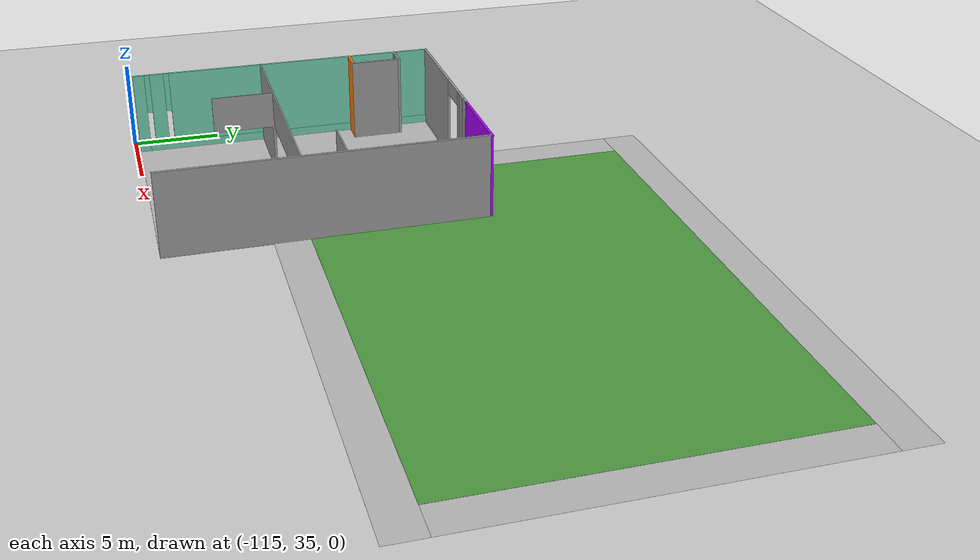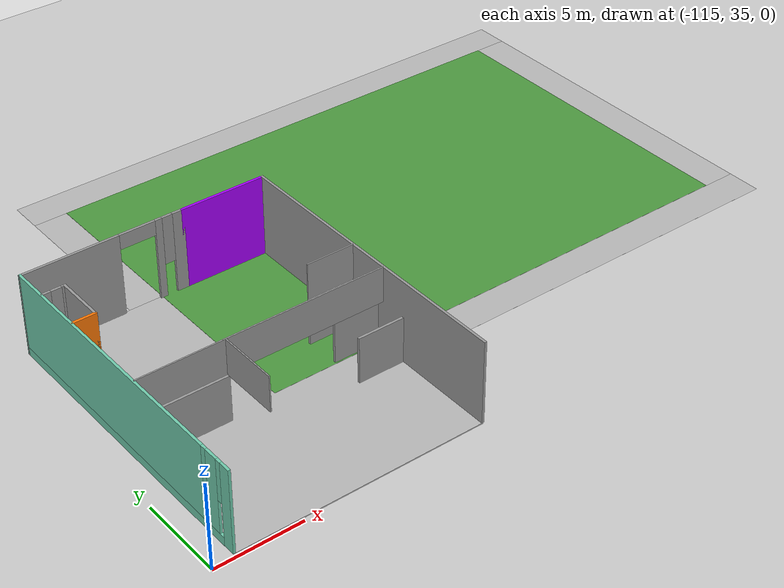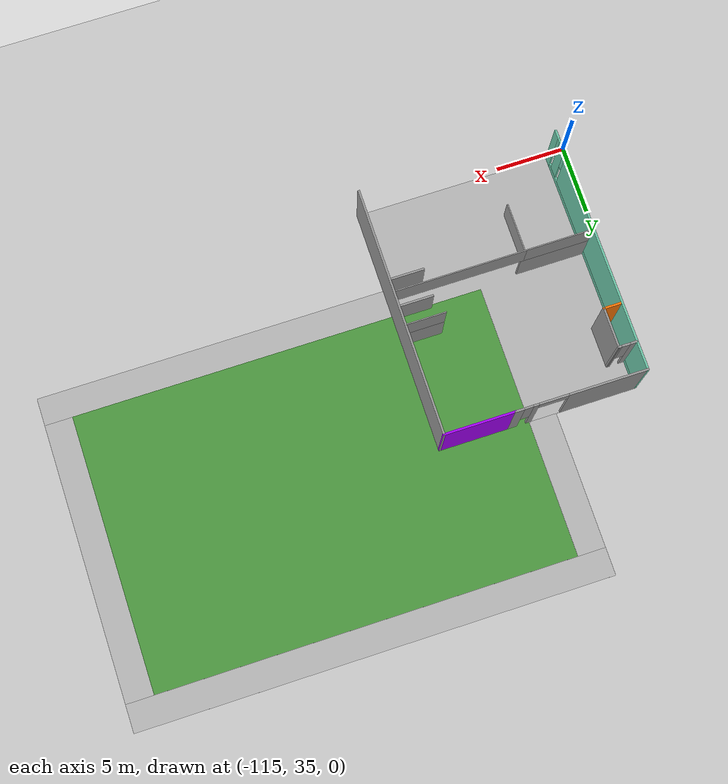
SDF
<sdf version="1.7">
 <world name="default">
  <model name="ground_plane">
   <static>1</static>
   <link name="link">
    <collision name="collision">
     <geometry><plane><normal>0 0 1</normal><size>100 100</size></plane></geometry>
     <surface><friction><ode><mu>100</mu><mu2>50</mu2></ode></friction></surface>
    </collision>
    <visual name="visual">
     <cast_shadows>0</cast_shadows>
     <geometry><plane><normal>0 0 1</normal><size>100 100</size></plane></geometry>
     <material>
      <script><uri>file://media/materials/scripts/gazebo.material</uri><name>Gazebo/Grey</name></script>
     </material>
    </visual>
   </link>
  </model>
  <model name="robocup_3d_field_3">
   <static>1</static>
   <link name="field">
    <pose>0 0 0.01 0 -0 0</pose>
    <collision name="collision">
     <geometry><plane><normal>0 0 1</normal><size>30 20</size></plane></geometry>
     <surface><friction><ode><mu>100</mu><mu2>50</mu2></ode></friction></surface>
    </collision>
    <visual name="base1">
     <pose>0 11 0.001 0 -0 0</pose>
     <cast_shadows>0</cast_shadows>
     <geometry><plane><normal>0 0 1</normal><size>34 2</size></plane></geometry>
     <material>
      <script>
       <uri>model://robocup_3Dsim_field/materials/scripts/</uri>
       <uri>model://robocup_3Dsim_field/materials/textures/</uri>
       <name>RoboCup/FieldBorder</name>
      </script>
     </material>
    </visual>
    <visual name="base2">
     <pose>0 -11 0.001 0 -0 0</pose>
     <cast_shadows>0</cast_shadows>
     <geometry><plane><normal>0 0 1</normal><size>34 2</size></plane></geometry>
     <material>
      <script>
       <uri>model://robocup_3Dsim_field/materials/scripts/</uri>
       <uri>model://robocup_3Dsim_field/materials/textures/</uri>
       <name>RoboCup/FieldBorder</name>
      </script>
     </material>
    </visual>
    <visual name="base3">
     <pose>16 0 0.001 0 -0 0</pose>
     <cast_shadows>0</cast_shadows>
     <geometry><plane><normal>0 0 1</normal><size>2 20</size></plane></geometry>
     <material>
      <script>
       <uri>model://robocup_3Dsim_field/materials/scripts/</uri>
       <uri>model://robocup_3Dsim_field/materials/textures/</uri>
       <name>RoboCup/FieldBorder</name>
      </script>
     </material>
    </visual>
    <visual name="base4">
     <pose>-16 0 0.001 0 -0 0</pose>
     <cast_shadows>0</cast_shadows>
     <geometry><plane><normal>0 0 1</normal><size>2 20</size></plane></geometry>
     <material>
      <script>
       <uri>model://robocup_3Dsim_field/materials/scripts/</uri>
       <uri>model://robocup_3Dsim_field/materials/textures/</uri>
       <name>RoboCup/FieldBorder</name>
      </script>
     </material>
    </visual>
    <visual name="carpet">
     <cast_shadows>0</cast_shadows>
     <geometry><plane><normal>0 0 1</normal><size>30 20</size></plane></geometry>
     <material>
      <script>
       <uri>model://robocup_3Dsim_field/materials/scripts/</uri>
       <uri>model://robocup_3Dsim_field/materials/textures/</uri>
       <name>RoboCup/Grass</name>
      </script>
     </material>
    </visual>
   </link>
   <pose>-90.8606 53.1637 0 0 -0 0</pose>
  </model>
  <model name="44444444443osrf_elevator_clone">
   <link name="Wall_0">
    <pose>-7.17647 0.013004 0 0 -0 1.57174</pose>
    <visual name="Wall_0_Visual_1">
     <meta><layer>0</layer></meta>
     <pose>0.331828 0 0.25 0 -0 0</pose>
     <geometry><box><size>17.4519 0.15 0.5</size></box></geometry>
     <material>
      <script><uri>file://media/materials/scripts/gazebo.material</uri><name>Gazebo/Grey</name></script>
      <ambient>0.435294 0.796078 0.67451 1</ambient>
      <shader type="pixel"/>
     </material>
    </visual>
    <visual name="Wall_0_Visual_0">
     <meta><layer>0</layer></meta>
     <pose>-8.72596 0 2.4385 0 -0 0</pose>
     <geometry><box><size>0.663656 0.15 4.877</size></box></geometry>
     <material>
      <script><uri>file://media/materials/scripts/gazebo.material</uri><name>Gazebo/Grey</name></script>
      <ambient>0.435294 0.796078 0.67451 1</ambient>
      <shader type="pixel"/>
     </material>
    </visual>
    <visual name="Wall_0_Visual_3">
     <meta><layer>0</layer></meta>
     <pose>1.05709 0 2.6885 0 -0 0</pose>
     <geometry><box><size>16.0014 0.15 4.377</size></box></geometry>
     <material>
      <script><uri>file://media/materials/scripts/gazebo.material</uri><name>Gazebo/Grey</name></script>
      <ambient>0.435294 0.796078 0.67451 1</ambient>
      <shader type="pixel"/>
     </material>
    </visual>
    <visual name="Wall_0_Visual_2">
     <meta><layer>0</layer></meta>
     <pose>-7.67281 0 2.6885 0 -0 0</pose>
     <geometry><box><size>0.816657 0.15 4.377</size></box></geometry>
     <material>
      <script><uri>file://media/materials/scripts/gazebo.material</uri><name>Gazebo/Grey</name></script>
      <ambient>0.435294 0.796078 0.67451 1</ambient>
      <shader type="pixel"/>
     </material>
    </visual>
    <visual name="Wall_0_Visual_4">
     <meta><layer>0</layer></meta>
     <pose>-8.23763 0 3.6885 0 -0 0</pose>
     <geometry><box><size>0.313 0.15 2.377</size></box></geometry>
     <material>
      <script><uri>file://media/materials/scripts/gazebo.material</uri><name>Gazebo/Grey</name></script>
      <ambient>0.435294 0.796078 0.67451 1</ambient>
      <shader type="pixel"/>
     </material>
    </visual>
    <visual name="Wall_0_Visual_5">
     <meta><layer>0</layer></meta>
     <pose>-7.10405 0 3.6885 0 -0 0</pose>
     <geometry><box><size>0.320861 0.15 2.377</size></box></geometry>
     <material>
      <script><uri>file://media/materials/scripts/gazebo.material</uri><name>Gazebo/Grey</name></script>
      <ambient>0.435294 0.796078 0.67451 1</ambient>
      <shader type="pixel"/>
     </material>
    </visual>
    <collision name="Wall_0_Collision_0">
     <pose>-8.72596 0 2.4385 0 -0 0</pose>
     <geometry><box><size>0.663656 0.15 4.877</size></box></geometry>
     <surface>
      <friction>
       <ode><mu>1</mu><mu2>1</mu2><fdir1>0 0 0</fdir1><slip1>0</slip1><slip2>0</slip2></ode>
       <torsional>
        <coefficient>1</coefficient>
        <patch_radius>0</patch_radius>
        <surface_radius>0</surface_radius>
        <use_patch_radius>1</use_patch_radius>
        <ode><slip>0</slip></ode>
       </torsional>
      </friction>
      <bounce><restitution_coefficient>0</restitution_coefficient><threshold>1e+06</threshold></bounce>
      <contact>
       <collide_without_contact>0</collide_without_contact>
       <collide_without_contact_bitmask>1</collide_without_contact_bitmask>
       <collide_bitmask>1</collide_bitmask>
       <ode>
        <soft_cfm>0</soft_cfm>
        <soft_erp>0.2</soft_erp>
        <kp>1e+13</kp>
        <kd>1</kd>
        <max_vel>0.01</max_vel>
        <min_depth>0</min_depth>
       </ode>
       <bullet>
        <split_impulse>1</split_impulse>
        <split_impulse_penetration_threshold>-0.01</split_impulse_penetration_threshold>
        <soft_cfm>0</soft_cfm>
        <soft_erp>0.2</soft_erp>
        <kp>1e+13</kp>
        <kd>1</kd>
       </bullet>
      </contact>
     </surface>
    </collision>
    <collision name="Wall_0_Collision_5">
     <pose>-7.10405 0 3.6885 0 -0 0</pose>
     <geometry><box><size>0.320861 0.15 2.377</size></box></geometry>
     <surface>
      <friction>
       <ode><mu>1</mu><mu2>1</mu2><fdir1>0 0 0</fdir1><slip1>0</slip1><slip2>0</slip2></ode>
       <torsional>
        <coefficient>1</coefficient>
        <patch_radius>0</patch_radius>
        <surface_radius>0</surface_radius>
        <use_patch_radius>1</use_patch_radius>
        <ode><slip>0</slip></ode>
       </torsional>
      </friction>
      <bounce><restitution_coefficient>0</restitution_coefficient><threshold>1e+06</threshold></bounce>
      <contact>
       <collide_without_contact>0</collide_without_contact>
       <collide_without_contact_bitmask>1</collide_without_contact_bitmask>
       <collide_bitmask>1</collide_bitmask>
       <ode>
        <soft_cfm>0</soft_cfm>
        <soft_erp>0.2</soft_erp>
        <kp>1e+13</kp>
        <kd>1</kd>
        <max_vel>0.01</max_vel>
        <min_depth>0</min_depth>
       </ode>
       <bullet>
        <split_impulse>1</split_impulse>
        <split_impulse_penetration_threshold>-0.01</split_impulse_penetration_threshold>
        <soft_cfm>0</soft_cfm>
        <soft_erp>0.2</soft_erp>
        <kp>1e+13</kp>
        <kd>1</kd>
       </bullet>
      </contact>
     </surface>
    </collision>
    <collision name="Wall_0_Collision_1">
     <pose>0.331828 0 0.25 0 -0 0</pose>
     <geometry><box><size>17.4519 0.15 0.5</size></box></geometry>
     <surface>
      <friction>
       <ode><mu>1</mu><mu2>1</mu2><fdir1>0 0 0</fdir1><slip1>0</slip1><slip2>0</slip2></ode>
       <torsional>
        <coefficient>1</coefficient>
        <patch_radius>0</patch_radius>
        <surface_radius>0</surface_radius>
        <use_patch_radius>1</use_patch_radius>
        <ode><slip>0</slip></ode>
       </torsional>
      </friction>
      <bounce><restitution_coefficient>0</restitution_coefficient><threshold>1e+06</threshold></bounce>
      <contact>
       <collide_without_contact>0</collide_without_contact>
       <collide_without_contact_bitmask>1</collide_without_contact_bitmask>
       <collide_bitmask>1</collide_bitmask>
       <ode>
        <soft_cfm>0</soft_cfm>
        <soft_erp>0.2</soft_erp>
        <kp>1e+13</kp>
        <kd>1</kd>
        <max_vel>0.01</max_vel>
        <min_depth>0</min_depth>
       </ode>
       <bullet>
        <split_impulse>1</split_impulse>
        <split_impulse_penetration_threshold>-0.01</split_impulse_penetration_threshold>
        <soft_cfm>0</soft_cfm>
        <soft_erp>0.2</soft_erp>
        <kp>1e+13</kp>
        <kd>1</kd>
       </bullet>
      </contact>
     </surface>
    </collision>
    <collision name="Wall_0_Collision_2">
     <pose>-7.67281 0 2.6885 0 -0 0</pose>
     <geometry><box><size>0.816657 0.15 4.377</size></box></geometry>
     <surface>
      <friction>
       <ode><mu>1</mu><mu2>1</mu2><fdir1>0 0 0</fdir1><slip1>0</slip1><slip2>0</slip2></ode>
       <torsional>
        <coefficient>1</coefficient>
        <patch_radius>0</patch_radius>
        <surface_radius>0</surface_radius>
        <use_patch_radius>1</use_patch_radius>
        <ode><slip>0</slip></ode>
       </torsional>
      </friction>
      <bounce><restitution_coefficient>0</restitution_coefficient><threshold>1e+06</threshold></bounce>
      <contact>
       <collide_without_contact>0</collide_without_contact>
       <collide_without_contact_bitmask>1</collide_without_contact_bitmask>
       <collide_bitmask>1</collide_bitmask>
       <ode>
        <soft_cfm>0</soft_cfm>
        <soft_erp>0.2</soft_erp>
        <kp>1e+13</kp>
        <kd>1</kd>
        <max_vel>0.01</max_vel>
        <min_depth>0</min_depth>
       </ode>
       <bullet>
        <split_impulse>1</split_impulse>
        <split_impulse_penetration_threshold>-0.01</split_impulse_penetration_threshold>
        <soft_cfm>0</soft_cfm>
        <soft_erp>0.2</soft_erp>
        <kp>1e+13</kp>
        <kd>1</kd>
       </bullet>
      </contact>
     </surface>
    </collision>
    <collision name="Wall_0_Collision_3">
     <pose>1.05709 0 2.6885 0 -0 0</pose>
     <geometry><box><size>16.0014 0.15 4.377</size></box></geometry>
     <surface>
      <friction>
       <ode><mu>1</mu><mu2>1</mu2><fdir1>0 0 0</fdir1><slip1>0</slip1><slip2>0</slip2></ode>
       <torsional>
        <coefficient>1</coefficient>
        <patch_radius>0</patch_radius>
        <surface_radius>0</surface_radius>
        <use_patch_radius>1</use_patch_radius>
        <ode><slip>0</slip></ode>
       </torsional>
      </friction>
      <bounce><restitution_coefficient>0</restitution_coefficient><threshold>1e+06</threshold></bounce>
      <contact>
       <collide_without_contact>0</collide_without_contact>
       <collide_without_contact_bitmask>1</collide_without_contact_bitmask>
       <collide_bitmask>1</collide_bitmask>
       <ode>
        <soft_cfm>0</soft_cfm>
        <soft_erp>0.2</soft_erp>
        <kp>1e+13</kp>
        <kd>1</kd>
        <max_vel>0.01</max_vel>
        <min_depth>0</min_depth>
       </ode>
       <bullet>
        <split_impulse>1</split_impulse>
        <split_impulse_penetration_threshold>-0.01</split_impulse_penetration_threshold>
        <soft_cfm>0</soft_cfm>
        <soft_erp>0.2</soft_erp>
        <kp>1e+13</kp>
        <kd>1</kd>
       </bullet>
      </contact>
     </surface>
    </collision>
    <collision name="Wall_0_Collision_4">
     <pose>-8.23763 0 3.6885 0 -0 0</pose>
     <geometry><box><size>0.313 0.15 2.377</size></box></geometry>
     <surface>
      <friction>
       <ode><mu>1</mu><mu2>1</mu2><fdir1>0 0 0</fdir1><slip1>0</slip1><slip2>0</slip2></ode>
       <torsional>
        <coefficient>1</coefficient>
        <patch_radius>0</patch_radius>
        <surface_radius>0</surface_radius>
        <use_patch_radius>1</use_patch_radius>
        <ode><slip>0</slip></ode>
       </torsional>
      </friction>
      <bounce><restitution_coefficient>0</restitution_coefficient><threshold>1e+06</threshold></bounce>
      <contact>
       <collide_without_contact>0</collide_without_contact>
       <collide_without_contact_bitmask>1</collide_without_contact_bitmask>
       <collide_bitmask>1</collide_bitmask>
       <ode>
        <soft_cfm>0</soft_cfm>
        <soft_erp>0.2</soft_erp>
        <kp>1e+13</kp>
        <kd>1</kd>
        <max_vel>0.01</max_vel>
        <min_depth>0</min_depth>
       </ode>
       <bullet>
        <split_impulse>1</split_impulse>
        <split_impulse_penetration_threshold>-0.01</split_impulse_penetration_threshold>
        <soft_cfm>0</soft_cfm>
        <soft_erp>0.2</soft_erp>
        <kp>1e+13</kp>
        <kd>1</kd>
       </bullet>
      </contact>
     </surface>
    </collision>
   </link>
   <link name="Wall_16">
    <pose>-4.68247 -1.4425 0 0 -0 0</pose>
    <visual name="Wall_16_Visual">
     <meta><layer>0</layer></meta>
     <pose>0 0 1.3715 0 -0 0</pose>
     <geometry><box><size>5.12727 0.15 2.743</size></box></geometry>
     <material>
      <script><uri>file://media/materials/scripts/gazebo.material</uri><name>Gazebo/Grey</name></script>
      <ambient>1 1 1 1</ambient>
      <shader type="pixel"/>
     </material>
    </visual>
    <collision name="Wall_16_Collision">
     <pose>0 0 1.3715 0 -0 0</pose>
     <geometry><box><size>5.12727 0.15 2.743</size></box></geometry>
     <surface>
      <friction>
       <ode><mu>1</mu><mu2>1</mu2><fdir1>0 0 0</fdir1><slip1>0</slip1><slip2>0</slip2></ode>
       <torsional>
        <coefficient>1</coefficient>
        <patch_radius>0</patch_radius>
        <surface_radius>0</surface_radius>
        <use_patch_radius>1</use_patch_radius>
        <ode><slip>0</slip></ode>
       </torsional>
      </friction>
      <bounce><restitution_coefficient>0</restitution_coefficient><threshold>1e+06</threshold></bounce>
      <contact>
       <collide_without_contact>0</collide_without_contact>
       <collide_without_contact_bitmask>1</collide_without_contact_bitmask>
       <collide_bitmask>1</collide_bitmask>
       <ode>
        <soft_cfm>0</soft_cfm>
        <soft_erp>0.2</soft_erp>
        <kp>1e+13</kp>
        <kd>1</kd>
        <max_vel>0.01</max_vel>
        <min_depth>0</min_depth>
       </ode>
       <bullet>
        <split_impulse>1</split_impulse>
        <split_impulse_penetration_threshold>-0.01</split_impulse_penetration_threshold>
        <soft_cfm>0</soft_cfm>
        <soft_erp>0.2</soft_erp>
        <kp>1e+13</kp>
        <kd>1</kd>
       </bullet>
      </contact>
     </surface>
    </collision>
   </link>
   <link name="Wall_20">
    <pose>5.74253 1.037 0 0 0 -3.1383</pose>
    <visual name="Wall_20_Visual">
     <meta><layer>0</layer></meta>
     <pose>0 0 1.3715 0 -0 0</pose>
     <geometry><box><size>2.88731 0.15 2.743</size></box></geometry>
     <material>
      <script><uri>file://media/materials/scripts/gazebo.material</uri><name>Gazebo/Grey</name></script>
      <ambient>1 1 1 1</ambient>
      <shader type="pixel"/>
     </material>
    </visual>
    <collision name="Wall_20_Collision">
     <pose>0 0 1.3715 0 -0 0</pose>
     <geometry><box><size>2.88731 0.15 2.743</size></box></geometry>
     <surface>
      <friction>
       <ode><mu>1</mu><mu2>1</mu2><fdir1>0 0 0</fdir1><slip1>0</slip1><slip2>0</slip2></ode>
       <torsional>
        <coefficient>1</coefficient>
        <patch_radius>0</patch_radius>
        <surface_radius>0</surface_radius>
        <use_patch_radius>1</use_patch_radius>
        <ode><slip>0</slip></ode>
       </torsional>
      </friction>
      <bounce><restitution_coefficient>0</restitution_coefficient><threshold>1e+06</threshold></bounce>
      <contact>
       <collide_without_contact>0</collide_without_contact>
       <collide_without_contact_bitmask>1</collide_without_contact_bitmask>
       <collide_bitmask>1</collide_bitmask>
       <ode>
        <soft_cfm>0</soft_cfm>
        <soft_erp>0.2</soft_erp>
        <kp>1e+13</kp>
        <kd>1</kd>
        <max_vel>0.01</max_vel>
        <min_depth>0</min_depth>
       </ode>
       <bullet>
        <split_impulse>1</split_impulse>
        <split_impulse_penetration_threshold>-0.01</split_impulse_penetration_threshold>
        <soft_cfm>0</soft_cfm>
        <soft_erp>0.2</soft_erp>
        <kp>1e+13</kp>
        <kd>1</kd>
       </bullet>
      </contact>
     </surface>
    </collision>
   </link>
   <link name="Wall_23">
    <pose>5.74203 -2.9565 0 0 -0 0</pose>
    <visual name="Wall_23_Visual">
     <meta><layer>0</layer></meta>
     <pose>0 0 1.3715 0 -0 0</pose>
     <geometry><box><size>2.75 0.15 2.743</size></box></geometry>
     <material>
      <script><uri>file://media/materials/scripts/gazebo.material</uri><name>Gazebo/Grey</name></script>
      <ambient>1 1 1 1</ambient>
      <shader type="pixel"/>
     </material>
    </visual>
    <collision name="Wall_23_Collision">
     <pose>0 0 1.3715 0 -0 0</pose>
     <geometry><box><size>2.75 0.15 2.743</size></box></geometry>
     <surface>
      <friction>
       <ode><mu>1</mu><mu2>1</mu2><fdir1>0 0 0</fdir1><slip1>0</slip1><slip2>0</slip2></ode>
       <torsional>
        <coefficient>1</coefficient>
        <patch_radius>0</patch_radius>
        <surface_radius>0</surface_radius>
        <use_patch_radius>1</use_patch_radius>
        <ode><slip>0</slip></ode>
       </torsional>
      </friction>
      <bounce><restitution_coefficient>0</restitution_coefficient><threshold>1e+06</threshold></bounce>
      <contact>
       <collide_without_contact>0</collide_without_contact>
       <collide_without_contact_bitmask>1</collide_without_contact_bitmask>
       <collide_bitmask>1</collide_bitmask>
       <ode>
        <soft_cfm>0</soft_cfm>
        <soft_erp>0.2</soft_erp>
        <kp>1e+13</kp>
        <kd>1</kd>
        <max_vel>0.01</max_vel>
        <min_depth>0</min_depth>
       </ode>
       <bullet>
        <split_impulse>1</split_impulse>
        <split_impulse_penetration_threshold>-0.01</split_impulse_penetration_threshold>
        <soft_cfm>0</soft_cfm>
        <soft_erp>0.2</soft_erp>
        <kp>1e+13</kp>
        <kd>1</kd>
       </bullet>
      </contact>
     </surface>
    </collision>
   </link>
   <link name="Wall_25">
    <pose>5.76203 -0.932495 0 0 -0 0</pose>
    <visual name="Wall_25_Visual">
     <meta><layer>0</layer></meta>
     <pose>0 0 1.3715 0 -0 0</pose>
     <geometry><box><size>2.75 0.15 2.743</size></box></geometry>
     <material>
      <script><uri>file://media/materials/scripts/gazebo.material</uri><name>Gazebo/Grey</name></script>
      <ambient>1 1 1 1</ambient>
      <shader type="pixel"/>
     </material>
    </visual>
    <collision name="Wall_25_Collision">
     <pose>0 0 1.3715 0 -0 0</pose>
     <geometry><box><size>2.75 0.15 2.743</size></box></geometry>
     <surface>
      <friction>
       <ode><mu>1</mu><mu2>1</mu2><fdir1>0 0 0</fdir1><slip1>0</slip1><slip2>0</slip2></ode>
       <torsional>
        <coefficient>1</coefficient>
        <patch_radius>0</patch_radius>
        <surface_radius>0</surface_radius>
        <use_patch_radius>1</use_patch_radius>
        <ode><slip>0</slip></ode>
       </torsional>
      </friction>
      <bounce><restitution_coefficient>0</restitution_coefficient><threshold>1e+06</threshold></bounce>
      <contact>
       <collide_without_contact>0</collide_without_contact>
       <collide_without_contact_bitmask>1</collide_without_contact_bitmask>
       <collide_bitmask>1</collide_bitmask>
       <ode>
        <soft_cfm>0</soft_cfm>
        <soft_erp>0.2</soft_erp>
        <kp>1e+13</kp>
        <kd>1</kd>
        <max_vel>0.01</max_vel>
        <min_depth>0</min_depth>
       </ode>
       <bullet>
        <split_impulse>1</split_impulse>
        <split_impulse_penetration_threshold>-0.01</split_impulse_penetration_threshold>
        <soft_cfm>0</soft_cfm>
        <soft_erp>0.2</soft_erp>
        <kp>1e+13</kp>
        <kd>1</kd>
       </bullet>
      </contact>
     </surface>
    </collision>
   </link>
   <link name="Wall_29">
    <pose>-6.49697 4.1045 0 0 -0 0</pose>
    <visual name="Wall_29_Visual">
     <meta><layer>0</layer></meta>
     <pose>0 0 2.4385 0 -0 0</pose>
     <geometry><box><size>1.39187 0.15 4.877</size></box></geometry>
     <material>
      <script><uri>file://media/materials/scripts/gazebo.material</uri><name>Gazebo/Grey</name></script>
      <ambient>0.996078 0.47451 0.0196078 1</ambient>
      <shader type="pixel"/>
     </material>
    </visual>
    <collision name="Wall_29_Collision">
     <pose>0 0 2.4385 0 -0 0</pose>
     <geometry><box><size>1.39187 0.15 4.877</size></box></geometry>
     <surface>
      <friction>
       <ode><mu>1</mu><mu2>1</mu2><fdir1>0 0 0</fdir1><slip1>0</slip1><slip2>0</slip2></ode>
       <torsional>
        <coefficient>1</coefficient>
        <patch_radius>0</patch_radius>
        <surface_radius>0</surface_radius>
        <use_patch_radius>1</use_patch_radius>
        <ode><slip>0</slip></ode>
       </torsional>
      </friction>
      <bounce><restitution_coefficient>0</restitution_coefficient><threshold>1e+06</threshold></bounce>
      <contact>
       <collide_without_contact>0</collide_without_contact>
       <collide_without_contact_bitmask>1</collide_without_contact_bitmask>
       <collide_bitmask>1</collide_bitmask>
       <ode>
        <soft_cfm>0</soft_cfm>
        <soft_erp>0.2</soft_erp>
        <kp>1e+13</kp>
        <kd>1</kd>
        <max_vel>0.01</max_vel>
        <min_depth>0</min_depth>
       </ode>
       <bullet>
        <split_impulse>1</split_impulse>
        <split_impulse_penetration_threshold>-0.01</split_impulse_penetration_threshold>
        <soft_cfm>0</soft_cfm>
        <soft_erp>0.2</soft_erp>
        <kp>1e+13</kp>
        <kd>1</kd>
       </bullet>
      </contact>
     </surface>
    </collision>
   </link>
   <link name="Wall_30">
    <pose>-5.87597 5.5295 0 0 -0 1.5708</pose>
    <visual name="Wall_30_Visual">
     <meta><layer>0</layer></meta>
     <pose>0 0 2.4385 0 -0 0</pose>
     <geometry><box><size>3 0.15 4.877</size></box></geometry>
     <material>
      <script><uri>file://media/materials/scripts/gazebo.material</uri><name>Gazebo/Grey</name></script>
      <ambient>1 1 1 1</ambient>
      <shader type="pixel"/>
     </material>
    </visual>
    <collision name="Wall_30_Collision">
     <pose>0 0 2.4385 0 -0 0</pose>
     <geometry><box><size>3 0.15 4.877</size></box></geometry>
     <surface>
      <friction>
       <ode><mu>1</mu><mu2>1</mu2><fdir1>0 0 0</fdir1><slip1>0</slip1><slip2>0</slip2></ode>
       <torsional>
        <coefficient>1</coefficient>
        <patch_radius>0</patch_radius>
        <surface_radius>0</surface_radius>
        <use_patch_radius>1</use_patch_radius>
        <ode><slip>0</slip></ode>
       </torsional>
      </friction>
      <bounce><restitution_coefficient>0</restitution_coefficient><threshold>1e+06</threshold></bounce>
      <contact>
       <collide_without_contact>0</collide_without_contact>
       <collide_without_contact_bitmask>1</collide_without_contact_bitmask>
       <collide_bitmask>1</collide_bitmask>
       <ode>
        <soft_cfm>0</soft_cfm>
        <soft_erp>0.2</soft_erp>
        <kp>1e+13</kp>
        <kd>1</kd>
        <max_vel>0.01</max_vel>
        <min_depth>0</min_depth>
       </ode>
       <bullet>
        <split_impulse>1</split_impulse>
        <split_impulse_penetration_threshold>-0.01</split_impulse_penetration_threshold>
        <soft_cfm>0</soft_cfm>
        <soft_erp>0.2</soft_erp>
        <kp>1e+13</kp>
        <kd>1</kd>
       </bullet>
      </contact>
     </surface>
    </collision>
   </link>
   <link name="Wall_31">
    <pose>-6.50397 6.9525 0 0 0 -3.13841</pose>
    <visual name="Wall_31_Visual_0">
     <meta><layer>0</layer></meta>
     <pose>-0.567544 0 2.4385 0 -0 0</pose>
     <geometry><box><size>0.271575 0.15 4.877</size></box></geometry>
     <material>
      <script><uri>file://media/materials/scripts/gazebo.material</uri><name>Gazebo/Grey</name></script>
      <ambient>1 1 1 1</ambient>
      <shader type="pixel"/>
     </material>
    </visual>
    <visual name="Wall_31_Visual_1">
     <meta><layer>0</layer></meta>
     <pose>0.441678 0 2.4385 0 -0 0</pose>
     <geometry><box><size>0.523307 0.15 4.877</size></box></geometry>
     <material>
      <script><uri>file://media/materials/scripts/gazebo.material</uri><name>Gazebo/Grey</name></script>
      <ambient>1 1 1 1</ambient>
      <shader type="pixel"/>
     </material>
    </visual>
    <visual name="Wall_31_Visual_3">
     <meta><layer>0</layer></meta>
     <pose>-0.125866 0 3.4385 0 -0 0</pose>
     <geometry><box><size>0.611781 0.15 2.877</size></box></geometry>
     <material>
      <script><uri>file://media/materials/scripts/gazebo.material</uri><name>Gazebo/Grey</name></script>
      <ambient>1 1 1 1</ambient>
      <shader type="pixel"/>
     </material>
    </visual>
    <collision name="Wall_31_Collision_0">
     <pose>-0.567544 0 2.4385 0 -0 0</pose>
     <geometry><box><size>0.271575 0.15 4.877</size></box></geometry>
     <surface>
      <friction>
       <ode><mu>1</mu><mu2>1</mu2><fdir1>0 0 0</fdir1><slip1>0</slip1><slip2>0</slip2></ode>
       <torsional>
        <coefficient>1</coefficient>
        <patch_radius>0</patch_radius>
        <surface_radius>0</surface_radius>
        <use_patch_radius>1</use_patch_radius>
        <ode><slip>0</slip></ode>
       </torsional>
      </friction>
      <bounce><restitution_coefficient>0</restitution_coefficient><threshold>1e+06</threshold></bounce>
      <contact>
       <collide_without_contact>0</collide_without_contact>
       <collide_without_contact_bitmask>1</collide_without_contact_bitmask>
       <collide_bitmask>1</collide_bitmask>
       <ode>
        <soft_cfm>0</soft_cfm>
        <soft_erp>0.2</soft_erp>
        <kp>1e+13</kp>
        <kd>1</kd>
        <max_vel>0.01</max_vel>
        <min_depth>0</min_depth>
       </ode>
       <bullet>
        <split_impulse>1</split_impulse>
        <split_impulse_penetration_threshold>-0.01</split_impulse_penetration_threshold>
        <soft_cfm>0</soft_cfm>
        <soft_erp>0.2</soft_erp>
        <kp>1e+13</kp>
        <kd>1</kd>
       </bullet>
      </contact>
     </surface>
    </collision>
    <collision name="Wall_31_Collision_1">
     <pose>0.441678 0 2.4385 0 -0 0</pose>
     <geometry><box><size>0.523307 0.15 4.877</size></box></geometry>
     <surface>
      <friction>
       <ode><mu>1</mu><mu2>1</mu2><fdir1>0 0 0</fdir1><slip1>0</slip1><slip2>0</slip2></ode>
       <torsional>
        <coefficient>1</coefficient>
        <patch_radius>0</patch_radius>
        <surface_radius>0</surface_radius>
        <use_patch_radius>1</use_patch_radius>
        <ode><slip>0</slip></ode>
       </torsional>
      </friction>
      <bounce><restitution_coefficient>0</restitution_coefficient><threshold>1e+06</threshold></bounce>
      <contact>
       <collide_without_contact>0</collide_without_contact>
       <collide_without_contact_bitmask>1</collide_without_contact_bitmask>
       <collide_bitmask>1</collide_bitmask>
       <ode>
        <soft_cfm>0</soft_cfm>
        <soft_erp>0.2</soft_erp>
        <kp>1e+13</kp>
        <kd>1</kd>
        <max_vel>0.01</max_vel>
        <min_depth>0</min_depth>
       </ode>
       <bullet>
        <split_impulse>1</split_impulse>
        <split_impulse_penetration_threshold>-0.01</split_impulse_penetration_threshold>
        <soft_cfm>0</soft_cfm>
        <soft_erp>0.2</soft_erp>
        <kp>1e+13</kp>
        <kd>1</kd>
       </bullet>
      </contact>
     </surface>
    </collision>
    <collision name="Wall_31_Collision_3">
     <pose>-0.125866 0 3.4385 0 -0 0</pose>
     <geometry><box><size>0.611781 0.15 2.877</size></box></geometry>
     <surface>
      <friction>
       <ode><mu>1</mu><mu2>1</mu2><fdir1>0 0 0</fdir1><slip1>0</slip1><slip2>0</slip2></ode>
       <torsional>
        <coefficient>1</coefficient>
        <patch_radius>0</patch_radius>
        <surface_radius>0</surface_radius>
        <use_patch_radius>1</use_patch_radius>
        <ode><slip>0</slip></ode>
       </torsional>
      </friction>
      <bounce><restitution_coefficient>0</restitution_coefficient><threshold>1e+06</threshold></bounce>
      <contact>
       <collide_without_contact>0</collide_without_contact>
       <collide_without_contact_bitmask>1</collide_without_contact_bitmask>
       <collide_bitmask>1</collide_bitmask>
       <ode>
        <soft_cfm>0</soft_cfm>
        <soft_erp>0.2</soft_erp>
        <kp>1e+13</kp>
        <kd>1</kd>
        <max_vel>0.01</max_vel>
        <min_depth>0</min_depth>
       </ode>
       <bullet>
        <split_impulse>1</split_impulse>
        <split_impulse_penetration_threshold>-0.01</split_impulse_penetration_threshold>
        <soft_cfm>0</soft_cfm>
        <soft_erp>0.2</soft_erp>
        <kp>1e+13</kp>
        <kd>1</kd>
       </bullet>
      </contact>
     </surface>
    </collision>
   </link>
   <link name="Wall_35">
    <pose>-2.50997 8.9955 0 0 -0 0</pose>
    <visual name="Wall_35_Visual_0">
     <meta><layer>0</layer></meta>
     <pose>-1.92197 0 2.4385 0 -0 0</pose>
     <geometry><box><size>5.65606 0.15 4.877</size></box></geometry>
     <material>
      <script><uri>file://media/materials/scripts/gazebo.material</uri><name>Gazebo/Grey</name></script>
      <ambient>1 1 1 1</ambient>
      <shader type="pixel"/>
     </material>
    </visual>
    <visual name="Wall_35_Visual_1">
     <meta><layer>0</layer></meta>
     <pose>3.22541 0 2.4385 0 -0 0</pose>
     <geometry><box><size>0.406701 0.15 4.877</size></box></geometry>
     <material>
      <script><uri>file://media/materials/scripts/gazebo.material</uri><name>Gazebo/Grey</name></script>
      <ambient>1 1 1 1</ambient>
      <shader type="pixel"/>
     </material>
    </visual>
    <visual name="Wall_35_Visual_2">
     <meta><layer>0</layer></meta>
     <pose>4.40208 0 2.4385 0 -0 0</pose>
     <geometry><box><size>0.695843 0.15 4.877</size></box></geometry>
     <material>
      <script><uri>file://media/materials/scripts/gazebo.material</uri><name>Gazebo/Grey</name></script>
      <ambient>1 1 1 1</ambient>
      <shader type="pixel"/>
     </material>
    </visual>
    <visual name="Wall_35_Visual_5">
     <meta><layer>0</layer></meta>
     <pose>3.74146 0 3.4385 0 -0 0</pose>
     <geometry><box><size>0.625391 0.15 2.877</size></box></geometry>
     <material>
      <script><uri>file://media/materials/scripts/gazebo.material</uri><name>Gazebo/Grey</name></script>
      <ambient>1 1 1 1</ambient>
      <shader type="pixel"/>
     </material>
    </visual>
    <visual name="Wall_35_Visual_6">
     <meta><layer>0</layer></meta>
     <pose>1.96406 0 4.4385 0 -0 0</pose>
     <geometry><box><size>2.116 0.15 0.877</size></box></geometry>
     <material>
      <script><uri>file://media/materials/scripts/gazebo.material</uri><name>Gazebo/Grey</name></script>
      <ambient>1 1 1 1</ambient>
      <shader type="pixel"/>
     </material>
    </visual>
    <collision name="Wall_35_Collision_0">
     <pose>-1.92197 0 2.4385 0 -0 0</pose>
     <geometry><box><size>5.65606 0.15 4.877</size></box></geometry>
     <surface>
      <friction>
       <ode><mu>1</mu><mu2>1</mu2><fdir1>0 0 0</fdir1><slip1>0</slip1><slip2>0</slip2></ode>
       <torsional>
        <coefficient>1</coefficient>
        <patch_radius>0</patch_radius>
        <surface_radius>0</surface_radius>
        <use_patch_radius>1</use_patch_radius>
        <ode><slip>0</slip></ode>
       </torsional>
      </friction>
      <bounce><restitution_coefficient>0</restitution_coefficient><threshold>1e+06</threshold></bounce>
      <contact>
       <collide_without_contact>0</collide_without_contact>
       <collide_without_contact_bitmask>1</collide_without_contact_bitmask>
       <collide_bitmask>1</collide_bitmask>
       <ode>
        <soft_cfm>0</soft_cfm>
        <soft_erp>0.2</soft_erp>
        <kp>1e+13</kp>
        <kd>1</kd>
        <max_vel>0.01</max_vel>
        <min_depth>0</min_depth>
       </ode>
       <bullet>
        <split_impulse>1</split_impulse>
        <split_impulse_penetration_threshold>-0.01</split_impulse_penetration_threshold>
        <soft_cfm>0</soft_cfm>
        <soft_erp>0.2</soft_erp>
        <kp>1e+13</kp>
        <kd>1</kd>
       </bullet>
      </contact>
     </surface>
    </collision>
    <collision name="Wall_35_Collision_1">
     <pose>3.22541 0 2.4385 0 -0 0</pose>
     <geometry><box><size>0.406701 0.15 4.877</size></box></geometry>
     <surface>
      <friction>
       <ode><mu>1</mu><mu2>1</mu2><fdir1>0 0 0</fdir1><slip1>0</slip1><slip2>0</slip2></ode>
       <torsional>
        <coefficient>1</coefficient>
        <patch_radius>0</patch_radius>
        <surface_radius>0</surface_radius>
        <use_patch_radius>1</use_patch_radius>
        <ode><slip>0</slip></ode>
       </torsional>
      </friction>
      <bounce><restitution_coefficient>0</restitution_coefficient><threshold>1e+06</threshold></bounce>
      <contact>
       <collide_without_contact>0</collide_without_contact>
       <collide_without_contact_bitmask>1</collide_without_contact_bitmask>
       <collide_bitmask>1</collide_bitmask>
       <ode>
        <soft_cfm>0</soft_cfm>
        <soft_erp>0.2</soft_erp>
        <kp>1e+13</kp>
        <kd>1</kd>
        <max_vel>0.01</max_vel>
        <min_depth>0</min_depth>
       </ode>
       <bullet>
        <split_impulse>1</split_impulse>
        <split_impulse_penetration_threshold>-0.01</split_impulse_penetration_threshold>
        <soft_cfm>0</soft_cfm>
        <soft_erp>0.2</soft_erp>
        <kp>1e+13</kp>
        <kd>1</kd>
       </bullet>
      </contact>
     </surface>
    </collision>
    <collision name="Wall_35_Collision_2">
     <pose>4.40208 0 2.4385 0 -0 0</pose>
     <geometry><box><size>0.695843 0.15 4.877</size></box></geometry>
     <surface>
      <friction>
       <ode><mu>1</mu><mu2>1</mu2><fdir1>0 0 0</fdir1><slip1>0</slip1><slip2>0</slip2></ode>
       <torsional>
        <coefficient>1</coefficient>
        <patch_radius>0</patch_radius>
        <surface_radius>0</surface_radius>
        <use_patch_radius>1</use_patch_radius>
        <ode><slip>0</slip></ode>
       </torsional>
      </friction>
      <bounce><restitution_coefficient>0</restitution_coefficient><threshold>1e+06</threshold></bounce>
      <contact>
       <collide_without_contact>0</collide_without_contact>
       <collide_without_contact_bitmask>1</collide_without_contact_bitmask>
       <collide_bitmask>1</collide_bitmask>
       <ode>
        <soft_cfm>0</soft_cfm>
        <soft_erp>0.2</soft_erp>
        <kp>1e+13</kp>
        <kd>1</kd>
        <max_vel>0.01</max_vel>
        <min_depth>0</min_depth>
       </ode>
       <bullet>
        <split_impulse>1</split_impulse>
        <split_impulse_penetration_threshold>-0.01</split_impulse_penetration_threshold>
        <soft_cfm>0</soft_cfm>
        <soft_erp>0.2</soft_erp>
        <kp>1e+13</kp>
        <kd>1</kd>
       </bullet>
      </contact>
     </surface>
    </collision>
    <collision name="Wall_35_Collision_5">
     <pose>3.74146 0 3.4385 0 -0 0</pose>
     <geometry><box><size>0.625391 0.15 2.877</size></box></geometry>
     <surface>
      <friction>
       <ode><mu>1</mu><mu2>1</mu2><fdir1>0 0 0</fdir1><slip1>0</slip1><slip2>0</slip2></ode>
       <torsional>
        <coefficient>1</coefficient>
        <patch_radius>0</patch_radius>
        <surface_radius>0</surface_radius>
        <use_patch_radius>1</use_patch_radius>
        <ode><slip>0</slip></ode>
       </torsional>
      </friction>
      <bounce><restitution_coefficient>0</restitution_coefficient><threshold>1e+06</threshold></bounce>
      <contact>
       <collide_without_contact>0</collide_without_contact>
       <collide_without_contact_bitmask>1</collide_without_contact_bitmask>
       <collide_bitmask>1</collide_bitmask>
       <ode>
        <soft_cfm>0</soft_cfm>
        <soft_erp>0.2</soft_erp>
        <kp>1e+13</kp>
        <kd>1</kd>
        <max_vel>0.01</max_vel>
        <min_depth>0</min_depth>
       </ode>
       <bullet>
        <split_impulse>1</split_impulse>
        <split_impulse_penetration_threshold>-0.01</split_impulse_penetration_threshold>
        <soft_cfm>0</soft_cfm>
        <soft_erp>0.2</soft_erp>
        <kp>1e+13</kp>
        <kd>1</kd>
       </bullet>
      </contact>
     </surface>
    </collision>
    <collision name="Wall_35_Collision_6">
     <pose>1.96406 0 4.4385 0 -0 0</pose>
     <geometry><box><size>2.116 0.15 0.877</size></box></geometry>
     <surface>
      <friction>
       <ode><mu>1</mu><mu2>1</mu2><fdir1>0 0 0</fdir1><slip1>0</slip1><slip2>0</slip2></ode>
       <torsional>
        <coefficient>1</coefficient>
        <patch_radius>0</patch_radius>
        <surface_radius>0</surface_radius>
        <use_patch_radius>1</use_patch_radius>
        <ode><slip>0</slip></ode>
       </torsional>
      </friction>
      <bounce><restitution_coefficient>0</restitution_coefficient><threshold>1e+06</threshold></bounce>
      <contact>
       <collide_without_contact>0</collide_without_contact>
       <collide_without_contact_bitmask>1</collide_without_contact_bitmask>
       <collide_bitmask>1</collide_bitmask>
       <ode>
        <soft_cfm>0</soft_cfm>
        <soft_erp>0.2</soft_erp>
        <kp>1e+13</kp>
        <kd>1</kd>
        <max_vel>0.01</max_vel>
        <min_depth>0</min_depth>
       </ode>
       <bullet>
        <split_impulse>1</split_impulse>
        <split_impulse_penetration_threshold>-0.01</split_impulse_penetration_threshold>
        <soft_cfm>0</soft_cfm>
        <soft_erp>0.2</soft_erp>
        <kp>1e+13</kp>
        <kd>1</kd>
       </bullet>
      </contact>
     </surface>
    </collision>
   </link>
   <link name="Wall_36">
    <pose>4.67503 8.9955 0 0 -0 0</pose>
    <visual name="Wall_36_Visual">
     <meta><layer>0</layer></meta>
     <pose>0 0 2.4385 0 -0 0</pose>
     <geometry><box><size>5.17 0.15 4.877</size></box></geometry>
     <material>
      <script><uri>file://media/materials/scripts/gazebo.material</uri><name>Gazebo/Grey</name></script>
      <ambient>0.666667 0 1 1</ambient>
      <shader type="pixel"/>
     </material>
    </visual>
    <collision name="Wall_36_Collision">
     <pose>0 0 2.4385 0 -0 0</pose>
     <geometry><box><size>5.17 0.15 4.877</size></box></geometry>
     <surface>
      <friction>
       <ode><mu>1</mu><mu2>1</mu2><fdir1>0 0 0</fdir1><slip1>0</slip1><slip2>0</slip2></ode>
       <torsional>
        <coefficient>1</coefficient>
        <patch_radius>0</patch_radius>
        <surface_radius>0</surface_radius>
        <use_patch_radius>1</use_patch_radius>
        <ode><slip>0</slip></ode>
       </torsional>
      </friction>
      <bounce><restitution_coefficient>0</restitution_coefficient><threshold>1e+06</threshold></bounce>
      <contact>
       <collide_without_contact>0</collide_without_contact>
       <collide_without_contact_bitmask>1</collide_without_contact_bitmask>
       <collide_bitmask>1</collide_bitmask>
       <ode>
        <soft_cfm>0</soft_cfm>
        <soft_erp>0.2</soft_erp>
        <kp>1e+13</kp>
        <kd>1</kd>
        <max_vel>0.01</max_vel>
        <min_depth>0</min_depth>
       </ode>
       <bullet>
        <split_impulse>1</split_impulse>
        <split_impulse_penetration_threshold>-0.01</split_impulse_penetration_threshold>
        <soft_cfm>0</soft_cfm>
        <soft_erp>0.2</soft_erp>
        <kp>1e+13</kp>
        <kd>1</kd>
       </bullet>
      </contact>
     </surface>
    </collision>
   </link>
   <link name="Wall_5">
    <pose>7.18353 0.013004 0 0 0 -1.57096</pose>
    <visual name="Wall_5_Visual">
     <meta><layer>0</layer></meta>
     <pose>0 0 2.4385 0 -0 0</pose>
     <geometry><box><size>18.1152 0.15 4.877</size></box></geometry>
     <material>
      <script><uri>file://media/materials/scripts/gazebo.material</uri><name>Gazebo/Grey</name></script>
      <ambient>1 1 1 1</ambient>
      <shader type="pixel"/>
     </material>
    </visual>
    <collision name="Wall_5_Collision">
     <pose>0 0 2.4385 0 -0 0</pose>
     <geometry><box><size>18.1152 0.15 4.877</size></box></geometry>
     <surface>
      <friction>
       <ode><mu>1</mu><mu2>1</mu2><fdir1>0 0 0</fdir1><slip1>0</slip1><slip2>0</slip2></ode>
       <torsional>
        <coefficient>1</coefficient>
        <patch_radius>0</patch_radius>
        <surface_radius>0</surface_radius>
        <use_patch_radius>1</use_patch_radius>
        <ode><slip>0</slip></ode>
       </torsional>
      </friction>
      <bounce><restitution_coefficient>0</restitution_coefficient><threshold>1e+06</threshold></bounce>
      <contact>
       <collide_without_contact>0</collide_without_contact>
       <collide_without_contact_bitmask>1</collide_without_contact_bitmask>
       <collide_bitmask>1</collide_bitmask>
       <ode>
        <soft_cfm>0</soft_cfm>
        <soft_erp>0.2</soft_erp>
        <kp>1e+13</kp>
        <kd>1</kd>
        <max_vel>0.01</max_vel>
        <min_depth>0</min_depth>
       </ode>
       <bullet>
        <split_impulse>1</split_impulse>
        <split_impulse_penetration_threshold>-0.01</split_impulse_penetration_threshold>
        <soft_cfm>0</soft_cfm>
        <soft_erp>0.2</soft_erp>
        <kp>1e+13</kp>
        <kd>1</kd>
       </bullet>
      </contact>
     </surface>
    </collision>
   </link>
   <link name="floor1_part11">
    <pose>-2.17305 -3.18058 3.85794 1.5708 0 -1.5708</pose>
    <visual name="visual">
     <meta><layer>1</layer></meta>
     <geometry><box><size>3.4917 2.0998 0.078</size></box></geometry>
     <material><script><name>Gazebo/Grey</name><uri>__default__</uri></script><shader type="pixel"/></material>
    </visual>
    <collision name="collision">
     <geometry><box><size>3.4917 2.0998 0.078</size></box></geometry>
     <surface>
      <friction>
       <ode><mu>1</mu><mu2>1</mu2><fdir1>0 0 0</fdir1><slip1>0</slip1><slip2>0</slip2></ode>
       <torsional>
        <coefficient>1</coefficient>
        <patch_radius>0</patch_radius>
        <surface_radius>0</surface_radius>
        <use_patch_radius>1</use_patch_radius>
        <ode><slip>0</slip></ode>
       </torsional>
      </friction>
      <bounce><restitution_coefficient>0</restitution_coefficient><threshold>1e+06</threshold></bounce>
      <contact>
       <collide_without_contact>0</collide_without_contact>
       <collide_without_contact_bitmask>1</collide_without_contact_bitmask>
       <collide_bitmask>1</collide_bitmask>
       <ode>
        <soft_cfm>0</soft_cfm>
        <soft_erp>0.2</soft_erp>
        <kp>1e+13</kp>
        <kd>1</kd>
        <max_vel>0.01</max_vel>
        <min_depth>0</min_depth>
       </ode>
       <bullet>
        <split_impulse>1</split_impulse>
        <split_impulse_penetration_threshold>-0.01</split_impulse_penetration_threshold>
        <soft_cfm>0</soft_cfm>
        <soft_erp>0.2</soft_erp>
        <kp>1e+13</kp>
        <kd>1</kd>
       </bullet>
      </contact>
     </surface>
    </collision>
   </link>
   <link name="floor1_part5">
    <pose>-4.65046 -1.39728 3.85794 1.5708 -0 0</pose>
    <visual name="visual">
     <meta><layer>1</layer></meta>
     <geometry><box><size>5.03711 2.0998 0.078</size></box></geometry>
     <material><script><name>Gazebo/Grey</name><uri>__default__</uri></script><shader type="pixel"/></material>
    </visual>
    <collision name="collision">
     <geometry><box><size>5.03711 2.0998 0.078</size></box></geometry>
     <surface>
      <friction>
       <ode><mu>1</mu><mu2>1</mu2><fdir1>0 0 0</fdir1><slip1>0</slip1><slip2>0</slip2></ode>
       <torsional>
        <coefficient>1</coefficient>
        <patch_radius>0</patch_radius>
        <surface_radius>0</surface_radius>
        <use_patch_radius>1</use_patch_radius>
        <ode><slip>0</slip></ode>
       </torsional>
      </friction>
      <bounce><restitution_coefficient>0</restitution_coefficient><threshold>1e+06</threshold></bounce>
      <contact>
       <collide_without_contact>0</collide_without_contact>
       <collide_without_contact_bitmask>1</collide_without_contact_bitmask>
       <collide_bitmask>1</collide_bitmask>
       <ode>
        <soft_cfm>0</soft_cfm>
        <soft_erp>0.2</soft_erp>
        <kp>1e+13</kp>
        <kd>1</kd>
        <max_vel>0.01</max_vel>
        <min_depth>0</min_depth>
       </ode>
       <bullet>
        <split_impulse>1</split_impulse>
        <split_impulse_penetration_threshold>-0.01</split_impulse_penetration_threshold>
        <soft_cfm>0</soft_cfm>
        <soft_erp>0.2</soft_erp>
        <kp>1e+13</kp>
        <kd>1</kd>
       </bullet>
      </contact>
     </surface>
    </collision>
   </link>
   <link name="floor1_part6">
    <pose>5.71783 1.06705 3.85828 1.5708 -0 0</pose>
    <visual name="visual">
     <meta><layer>1</layer></meta>
     <geometry><box><size>2.83967 2.0998 0.078</size></box></geometry>
     <material><script><name>Gazebo/Grey</name><uri>__default__</uri></script><shader type="pixel"/></material>
    </visual>
    <collision name="collision">
     <geometry><box><size>2.83967 2.0998 0.078</size></box></geometry>
     <surface>
      <friction>
       <ode><mu>1</mu><mu2>1</mu2><fdir1>0 0 0</fdir1><slip1>0</slip1><slip2>0</slip2></ode>
       <torsional>
        <coefficient>1</coefficient>
        <patch_radius>0</patch_radius>
        <surface_radius>0</surface_radius>
        <use_patch_radius>1</use_patch_radius>
        <ode><slip>0</slip></ode>
       </torsional>
      </friction>
      <bounce><restitution_coefficient>0</restitution_coefficient><threshold>1e+06</threshold></bounce>
      <contact>
       <collide_without_contact>0</collide_without_contact>
       <collide_without_contact_bitmask>1</collide_without_contact_bitmask>
       <collide_bitmask>1</collide_bitmask>
       <ode>
        <soft_cfm>0</soft_cfm>
        <soft_erp>0.2</soft_erp>
        <kp>1e+13</kp>
        <kd>1</kd>
        <max_vel>0.01</max_vel>
        <min_depth>0</min_depth>
       </ode>
       <bullet>
        <split_impulse>1</split_impulse>
        <split_impulse_penetration_threshold>-0.01</split_impulse_penetration_threshold>
        <soft_cfm>0</soft_cfm>
        <soft_erp>0.2</soft_erp>
        <kp>1e+13</kp>
        <kd>1</kd>
       </bullet>
      </contact>
     </surface>
    </collision>
   </link>
   <link name="floor1_part7">
    <pose>2.39941 -1.39058 3.85828 1.5708 -0 0</pose>
    <visual name="visual">
     <meta><layer>1</layer></meta>
     <geometry><box><size>9.43026 2.0998 0.078</size></box></geometry>
     <material><script><name>Gazebo/Grey</name><uri>__default__</uri></script><shader type="pixel"/></material>
    </visual>
    <collision name="collision">
     <geometry><box><size>9.43026 2.0998 0.078</size></box></geometry>
     <surface>
      <friction>
       <ode><mu>1</mu><mu2>1</mu2><fdir1>0 0 0</fdir1><slip1>0</slip1><slip2>0</slip2></ode>
       <torsional>
        <coefficient>1</coefficient>
        <patch_radius>0</patch_radius>
        <surface_radius>0</surface_radius>
        <use_patch_radius>1</use_patch_radius>
        <ode><slip>0</slip></ode>
       </torsional>
      </friction>
      <bounce><restitution_coefficient>0</restitution_coefficient><threshold>1e+06</threshold></bounce>
      <contact>
       <collide_without_contact>0</collide_without_contact>
       <collide_without_contact_bitmask>1</collide_without_contact_bitmask>
       <collide_bitmask>1</collide_bitmask>
       <ode>
        <soft_cfm>0</soft_cfm>
        <soft_erp>0.2</soft_erp>
        <kp>1e+13</kp>
        <kd>1</kd>
        <max_vel>0.01</max_vel>
        <min_depth>0</min_depth>
       </ode>
       <bullet>
        <split_impulse>1</split_impulse>
        <split_impulse_penetration_threshold>-0.01</split_impulse_penetration_threshold>
        <soft_cfm>0</soft_cfm>
        <soft_erp>0.2</soft_erp>
        <kp>1e+13</kp>
        <kd>1</kd>
       </bullet>
      </contact>
     </surface>
    </collision>
   </link>
   <link name="ground_floor">
    <pose>0 0 -0.062833 0 -0 0</pose>
    <visual name="visual">
     <geometry><box><size>14.4 18.1 0.15</size></box></geometry>
     <material><shader type="pixel"/></material>
    </visual>
    <collision name="collision">
     <geometry><box><size>14.4 18.1 0.15</size></box></geometry>
     <surface>
      <friction>
       <ode><mu>1</mu><mu2>1</mu2><fdir1>0 0 0</fdir1><slip1>0</slip1><slip2>0</slip2></ode>
       <torsional>
        <coefficient>1</coefficient>
        <patch_radius>0</patch_radius>
        <surface_radius>0</surface_radius>
        <use_patch_radius>1</use_patch_radius>
        <ode><slip>0</slip></ode>
       </torsional>
      </friction>
      <bounce><restitution_coefficient>0</restitution_coefficient><threshold>1e+06</threshold></bounce>
      <contact>
       <collide_without_contact>0</collide_without_contact>
       <collide_without_contact_bitmask>1</collide_without_contact_bitmask>
       <collide_bitmask>1</collide_bitmask>
       <ode>
        <soft_cfm>0</soft_cfm>
        <soft_erp>0.2</soft_erp>
        <kp>1e+13</kp>
        <kd>1</kd>
        <max_vel>0.01</max_vel>
        <min_depth>0</min_depth>
       </ode>
       <bullet>
        <split_impulse>1</split_impulse>
        <split_impulse_penetration_threshold>-0.01</split_impulse_penetration_threshold>
        <soft_cfm>0</soft_cfm>
        <soft_erp>0.2</soft_erp>
        <kp>1e+13</kp>
        <kd>1</kd>
       </bullet>
      </contact>
     </surface>
    </collision>
   </link>
   <static>1</static>
   <pose>-106.496 44.2558 0 0 -0 0</pose>
  </model>
 </world>
</sdf>
